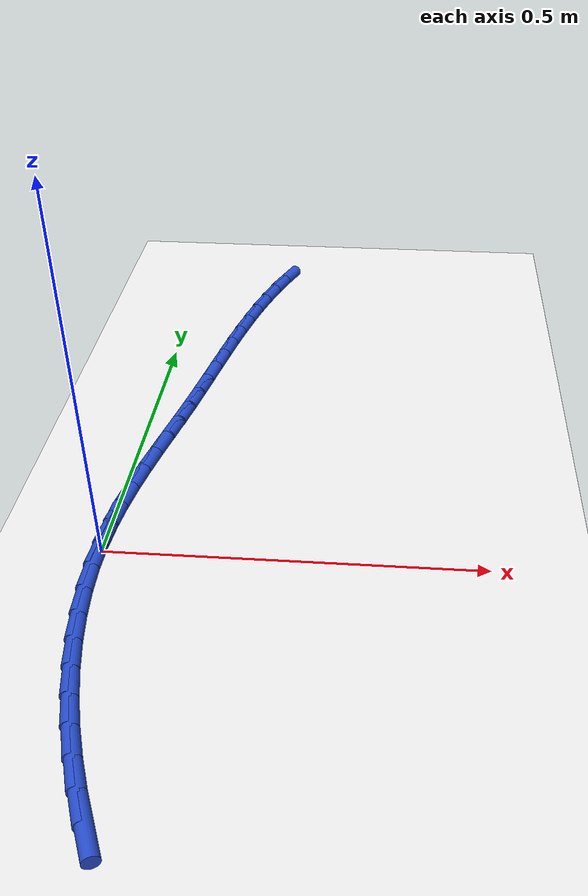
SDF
<sdf version="1.6">
 <world name="default">
  <model name="ground_plane">
   <static>1</static>
   <link name="link">
    <collision name="collision">
     <geometry><plane><normal>0 0 1</normal><size>100 100</size></plane></geometry>
     <surface><friction><ode><mu>100</mu><mu2>50</mu2></ode></friction></surface>
    </collision>
    <visual name="visual">
     <cast_shadows>0</cast_shadows>
     <geometry><plane><normal>0 0 1</normal><size>100 100</size></plane></geometry>
     <material>
      <script><uri>file://media/materials/scripts/gazebo.material</uri><name>Gazebo/WhiteGlow</name></script>
     </material>
    </visual>
   </link>
  </model>
  <model name="line">
   <link name="link_0">
    <pose>-1.3877787807814457e-17 6.938893903907228e-18 0.01 0 1.57 1.5076179601624589</pose>
    <collision name="collision">
     <geometry><cylinder><radius>0.01</radius><length>0.08</length></cylinder></geometry>
    </collision>
    <visual name="visual">
     <material>
      <script><name>Gazebo/Blue</name><uri>file://media/materials/scripts/gazebo.material</uri></script>
     </material>
     <geometry><cylinder><radius>0.01</radius><length>0.08</length></cylinder></geometry>
    </visual>
   </link>
   <link name="link_1">
    <pose>0.0026327551362451125 0.041616323085471835 0.01 0 1.57 1.4605868004483655</pose>
    <collision name="collision">
     <geometry><cylinder><radius>0.01</radius><length>0.08</length></cylinder></geometry>
    </collision>
    <visual name="visual">
     <material>
      <script><name>Gazebo/Blue</name><uri>file://media/materials/scripts/gazebo.material</uri></script>
     </material>
     <geometry><cylinder><radius>0.01</radius><length>0.08</length></cylinder></geometry>
    </visual>
   </link>
   <link name="link_2">
    <pose>0.007219254293357643 0.08306387154017866 0.01 0 1.57 1.4224987146371908</pose>
    <collision name="collision">
     <geometry><cylinder><radius>0.01</radius><length>0.08</length></cylinder></geometry>
    </collision>
    <visual name="visual">
     <material>
      <script><name>Gazebo/Blue</name><uri>file://media/materials/scripts/gazebo.material</uri></script>
     </material>
     <geometry><cylinder><radius>0.01</radius><length>0.08</length></cylinder></geometry>
    </visual>
   </link>
   <link name="link_3">
    <pose>0.013383954649306378 0.12432847542178009 0.01 0 1.57 1.3932881311233953</pose>
    <collision name="collision">
     <geometry><cylinder><radius>0.01</radius><length>0.08</length></cylinder></geometry>
    </collision>
    <visual name="visual">
     <material>
      <script><name>Gazebo/Blue</name><uri>file://media/materials/scripts/gazebo.material</uri></script>
     </material>
     <geometry><cylinder><radius>0.01</radius><length>0.08</length></cylinder></geometry>
    </visual>
   </link>
   <link name="link_4">
    <pose>0.02075131338206009 0.16539596478793556 0.01 0 1.57 1.3728540379417484</pose>
    <collision name="collision">
     <geometry><cylinder><radius>0.01</radius><length>0.08</length></cylinder></geometry>
    </collision>
    <visual name="visual">
     <material>
      <script><name>Gazebo/Blue</name><uri>file://media/materials/scripts/gazebo.material</uri></script>
     </material>
     <geometry><cylinder><radius>0.01</radius><length>0.08</length></cylinder></geometry>
    </visual>
   </link>
   <link name="link_5">
    <pose>0.02894578766958756 0.2062521696963046 0.01 0 1.57 1.3611280731720357</pose>
    <collision name="collision">
     <geometry><cylinder><radius>0.01</radius><length>0.08</length></cylinder></geometry>
    </collision>
    <visual name="visual">
     <material>
      <script><name>Gazebo/Blue</name><uri>file://media/materials/scripts/gazebo.material</uri></script>
     </material>
     <geometry><cylinder><radius>0.01</radius><length>0.08</length></cylinder></geometry>
    </visual>
   </link>
   <link name="link_6">
    <pose>0.0375918346898576 0.24688292020454689 0.01 0 1.57 1.3581214666338204</pose>
    <collision name="collision">
     <geometry><cylinder><radius>0.01</radius><length>0.08</length></cylinder></geometry>
    </collision>
    <visual name="visual">
     <material>
      <script><name>Gazebo/Blue</name><uri>file://media/materials/scripts/gazebo.material</uri></script>
     </material>
     <geometry><cylinder><radius>0.01</radius><length>0.08</length></cylinder></geometry>
    </visual>
   </link>
   <link name="link_7">
    <pose>0.04631391162083896 0.2872740463703218 0.01 0 1.57 1.363953154609393</pose>
    <collision name="collision">
     <geometry><cylinder><radius>0.01</radius><length>0.08</length></cylinder></geometry>
    </collision>
    <visual name="visual">
     <material>
      <script><name>Gazebo/Blue</name><uri>file://media/materials/scripts/gazebo.material</uri></script>
     </material>
     <geometry><cylinder><radius>0.01</radius><length>0.08</length></cylinder></geometry>
    </visual>
   </link>
   <link name="link_8">
    <pose>0.054736507099724524 0.3274113816478101 0.01 0 1.57 1.3759581262300205</pose>
    <collision name="collision">
     <geometry><cylinder><radius>0.01</radius><length>0.08</length></cylinder></geometry>
    </collision>
    <visual name="visual">
     <material>
      <script><name>Gazebo/Blue</name><uri>file://media/materials/scripts/gazebo.material</uri></script>
     </material>
     <geometry><cylinder><radius>0.01</radius><length>0.08</length></cylinder></geometry>
    </visual>
   </link>
   <link name="link_9">
    <pose>0.06260701658135871 0.3672940292276096 0.01 0 1.57 1.384738151761699</pose>
    <collision name="collision">
     <geometry><cylinder><radius>0.01</radius><length>0.08</length></cylinder></geometry>
    </collision>
    <visual name="visual">
     <material>
      <script><name>Gazebo/Blue</name><uri>file://media/materials/scripts/gazebo.material</uri></script>
     </material>
     <geometry><cylinder><radius>0.01</radius><length>0.08</length></cylinder></geometry>
    </visual>
   </link>
   <link name="link_10">
    <pose>0.07007438913279483 0.40696444636881773 0.01 0 1.57 1.3882119774970212</pose>
    <collision name="collision">
     <geometry><cylinder><radius>0.01</radius><length>0.08</length></cylinder></geometry>
    </collision>
    <visual name="visual">
     <material>
      <script><name>Gazebo/Blue</name><uri>file://media/materials/scripts/gazebo.material</uri></script>
     </material>
     <geometry><cylinder><radius>0.01</radius><length>0.08</length></cylinder></geometry>
    </visual>
   </link>
   <link name="link_11">
    <pose>0.07736944847023469 0.446473929994874 0.01 0 1.57 1.3862797304278913</pose>
    <collision name="collision">
     <geometry><cylinder><radius>0.01</radius><length>0.08</length></cylinder></geometry>
    </collision>
    <visual name="visual">
     <material>
      <script><name>Gazebo/Blue</name><uri>file://media/materials/scripts/gazebo.material</uri></script>
     </material>
     <geometry><cylinder><radius>0.01</radius><length>0.08</length></cylinder></geometry>
    </visual>
   </link>
   <link name="link_12">
    <pose>0.08472301830988012 0.4858737770292177 0.01 0 1.57 1.3789156836017862</pose>
    <collision name="collision">
     <geometry><cylinder><radius>0.01</radius><length>0.08</length></cylinder></geometry>
    </collision>
    <visual name="visual">
     <material>
      <script><name>Gazebo/Blue</name><uri>file://media/materials/scripts/gazebo.material</uri></script>
     </material>
     <geometry><cylinder><radius>0.01</radius><length>0.08</length></cylinder></geometry>
    </visual>
   </link>
   <link name="link_13">
    <pose>0.09236592236793296 0.5252152843952888 0.01 0 1.57 1.366171451836873</pose>
    <collision name="collision">
     <geometry><cylinder><radius>0.01</radius><length>0.08</length></cylinder></geometry>
    </collision>
    <visual name="visual">
     <material>
      <script><name>Gazebo/Blue</name><uri>file://media/materials/scripts/gazebo.material</uri></script>
     </material>
     <geometry><cylinder><radius>0.01</radius><length>0.08</length></cylinder></geometry>
    </visual>
   </link>
   <link name="link_14">
    <pose>0.10052898436059504 0.5645497490165267 0.01 0 1.57 1.3481811065946365</pose>
    <collision name="collision">
     <geometry><cylinder><radius>0.01</radius><length>0.08</length></cylinder></geometry>
    </collision>
    <visual name="visual">
     <material>
      <script><name>Gazebo/Blue</name><uri>file://media/materials/scripts/gazebo.material</uri></script>
     </material>
     <geometry><cylinder><radius>0.01</radius><length>0.08</length></cylinder></geometry>
    </visual>
   </link>
   <link name="link_15">
    <pose>0.10944302800406827 0.6039284678163712 0.01 0 1.57 1.3251673017870698</pose>
    <collision name="collision">
     <geometry><cylinder><radius>0.01</radius><length>0.08</length></cylinder></geometry>
    </collision>
    <visual name="visual">
     <material>
      <script><name>Gazebo/Blue</name><uri>file://media/materials/scripts/gazebo.material</uri></script>
     </material>
     <geometry><cylinder><radius>0.01</radius><length>0.08</length></cylinder></geometry>
    </visual>
   </link>
   <link name="link_16">
    <pose>0.11933887701455442 0.6434027377182618 0.01 0 1.57 1.2974467726669479</pose>
    <collision name="collision">
     <geometry><cylinder><radius>0.01</radius><length>0.08</length></cylinder></geometry>
    </collision>
    <visual name="visual">
     <material>
      <script><name>Gazebo/Blue</name><uri>file://media/materials/scripts/gazebo.material</uri></script>
     </material>
     <geometry><cylinder><radius>0.01</radius><length>0.08</length></cylinder></geometry>
    </visual>
   </link>
   <link name="link_17">
    <pose>0.1304473551082554 0.6830238556456383 0.01 0 1.57 1.265433024340191</pose>
    <collision name="collision">
     <geometry><cylinder><radius>0.01</radius><length>0.08</length></cylinder></geometry>
    </collision>
    <visual name="visual">
     <material>
      <script><name>Gazebo/Blue</name><uri>file://media/materials/scripts/gazebo.material</uri></script>
     </material>
     <geometry><cylinder><radius>0.01</radius><length>0.08</length></cylinder></geometry>
    </visual>
   </link>
   <link name="link_18">
    <pose>0.14299928600137293 0.7228431185219399 0.01 0 1.57 1.2296338511295346</pose>
    <collision name="collision">
     <geometry><cylinder><radius>0.01</radius><length>0.08</length></cylinder></geometry>
    </collision>
    <visual name="visual">
     <material>
      <script><name>Gazebo/Blue</name><uri>file://media/materials/scripts/gazebo.material</uri></script>
     </material>
     <geometry><cylinder><radius>0.01</radius><length>0.08</length></cylinder></geometry>
    </visual>
   </link>
   <link name="link_19">
    <pose>0.15722549341010894 0.7629118232706067 0.01 0 1.57 1.1906417028819094</pose>
    <collision name="collision">
     <geometry><cylinder><radius>0.01</radius><length>0.08</length></cylinder></geometry>
    </collision>
    <visual name="visual">
     <material>
      <script><name>Gazebo/Blue</name><uri>file://media/materials/scripts/gazebo.material</uri></script>
     </material>
     <geometry><cylinder><radius>0.01</radius><length>0.08</length></cylinder></geometry>
    </visual>
   </link>
   <link name="link_180">
    <pose>0.0871808085283066 -0.4032013260792255 0.01 0 1.57 -1.1504892845664216</pose>
    <collision name="collision">
     <geometry><cylinder><radius>0.01</radius><length>0.08</length></cylinder></geometry>
    </collision>
    <visual name="visual">
     <material>
      <script><name>Gazebo/Blue</name><uri>file://media/materials/scripts/gazebo.material</uri></script>
     </material>
     <geometry><cylinder><radius>0.01</radius><length>0.08</length></cylinder></geometry>
    </visual>
   </link>
   <link name="link_181">
    <pose>0.07039538156859 -0.36564506745942327 0.01 0 1.57 -1.192286440494673</pose>
    <collision name="collision">
     <geometry><cylinder><radius>0.01</radius><length>0.08</length></cylinder></geometry>
    </collision>
    <visual name="visual">
     <material>
      <script><name>Gazebo/Blue</name><uri>file://media/materials/scripts/gazebo.material</uri></script>
     </material>
     <geometry><cylinder><radius>0.01</radius><length>0.08</length></cylinder></geometry>
    </visual>
   </link>
   <link name="link_182">
    <pose>0.055156766599161626 -0.3273268510691383 0.01 0 1.57 -1.2369213754536943</pose>
    <collision name="collision">
     <geometry><cylinder><radius>0.01</radius><length>0.08</length></cylinder></geometry>
    </collision>
    <visual name="visual">
     <material>
      <script><name>Gazebo/Blue</name><uri>file://media/materials/scripts/gazebo.material</uri></script>
     </material>
     <geometry><cylinder><radius>0.01</radius><length>0.08</length></cylinder></geometry>
    </visual>
   </link>
   <link name="link_183">
    <pose>0.04157285815870959 -0.28816436490264036 0.01 0 1.57 -1.2825089962208205</pose>
    <collision name="collision">
     <geometry><cylinder><radius>0.01</radius><length>0.08</length></cylinder></geometry>
    </collision>
    <visual name="visual">
     <material>
      <script><name>Gazebo/Blue</name><uri>file://media/materials/scripts/gazebo.material</uri></script>
     </material>
     <geometry><cylinder><radius>0.01</radius><length>0.08</length></cylinder></geometry>
    </visual>
   </link>
   <link name="link_184">
    <pose>0.029732959080567035 -0.24823869709481394 0.01 0 1.57 -1.3287706789953326</pose>
    <collision name="collision">
     <geometry><cylinder><radius>0.01</radius><length>0.08</length></cylinder></geometry>
    </collision>
    <visual name="visual">
     <material>
      <script><name>Gazebo/Blue</name><uri>file://media/materials/scripts/gazebo.material</uri></script>
     </material>
     <geometry><cylinder><radius>0.01</radius><length>0.08</length></cylinder></geometry>
    </visual>
   </link>
   <link name="link_185">
    <pose>0.01972068168185609 -0.20768094900586662 0.01 0 1.57 -1.3759945000223002</pose>
    <collision name="collision">
     <geometry><cylinder><radius>0.01</radius><length>0.08</length></cylinder></geometry>
    </collision>
    <visual name="visual">
     <material>
      <script><name>Gazebo/Blue</name><uri>file://media/materials/scripts/gazebo.material</uri></script>
     </material>
     <geometry><cylinder><radius>0.01</radius><length>0.08</length></cylinder></geometry>
    </visual>
   </link>
   <link name="link_186">
    <pose>0.011619636823154759 -0.16662223479739025 0.01 0 1.57 -1.4244588533284221</pose>
    <collision name="collision">
     <geometry><cylinder><radius>0.01</radius><length>0.08</length></cylinder></geometry>
    </collision>
    <visual name="visual">
     <material>
      <script><name>Gazebo/Blue</name><uri>file://media/materials/scripts/gazebo.material</uri></script>
     </material>
     <geometry><cylinder><radius>0.01</radius><length>0.08</length></cylinder></geometry>
    </visual>
   </link>
   <link name="link_187">
    <pose>0.005513435365040534 -0.12519366863097398 0.01 0 1.57 -1.4744312738706804</pose>
    <collision name="collision">
     <geometry><cylinder><radius>0.01</radius><length>0.08</length></cylinder></geometry>
    </collision>
    <visual name="visual">
     <material>
      <script><name>Gazebo/Blue</name><uri>file://media/materials/scripts/gazebo.material</uri></script>
     </material>
     <geometry><cylinder><radius>0.01</radius><length>0.08</length></cylinder></geometry>
    </visual>
   </link>
   <link name="link_188">
    <pose>0.001485688168091438 -0.08352636466820959 0.01 0 1.57 -1.5261656531100318</pose>
    <collision name="collision">
     <geometry><cylinder><radius>0.01</radius><length>0.08</length></cylinder></geometry>
    </collision>
    <visual name="visual">
     <material>
      <script><name>Gazebo/Blue</name><uri>file://media/materials/scripts/gazebo.material</uri></script>
     </material>
     <geometry><cylinder><radius>0.01</radius><length>0.08</length></cylinder></geometry>
    </visual>
   </link>
   <link name="link_189">
    <pose>-0.00037999390711468926 -0.04175143707068792 0.01 0 1.57 1.5616952408894837</pose>
    <collision name="collision">
     <geometry><cylinder><radius>0.01</radius><length>0.08</length></cylinder></geometry>
    </collision>
    <visual name="visual">
     <material>
      <script><name>Gazebo/Blue</name><uri>file://media/materials/scripts/gazebo.material</uri></script>
     </material>
     <geometry><cylinder><radius>0.01</radius><length>0.08</length></cylinder></geometry>
    </visual>
   </link>
   <link name="link_190">
    <pose>-1.5612511283791264e-17 1.3877787807814457e-16 0.01 0 1.57 1.505756292606475</pose>
    <collision name="collision">
     <geometry><cylinder><radius>0.01</radius><length>0.08</length></cylinder></geometry>
    </collision>
    <visual name="visual">
     <material>
      <script><name>Gazebo/Blue</name><uri>file://media/materials/scripts/gazebo.material</uri></script>
     </material>
     <geometry><cylinder><radius>0.01</radius><length>0.08</length></cylinder></geometry>
    </visual>
   </link>
   <link name="link_191">
    <pose>0.0027092807500132994 0.04159683238226371 0.01 0 1.57 1.5057562926064751</pose>
    <collision name="collision">
     <geometry><cylinder><radius>0.01</radius><length>0.08</length></cylinder></geometry>
    </collision>
    <visual name="visual">
     <material>
      <script><name>Gazebo/Blue</name><uri>file://media/materials/scripts/gazebo.material</uri></script>
     </material>
     <geometry><cylinder><radius>0.01</radius><length>0.08</length></cylinder></geometry>
    </visual>
   </link>
  </model>
 </world>
</sdf>
